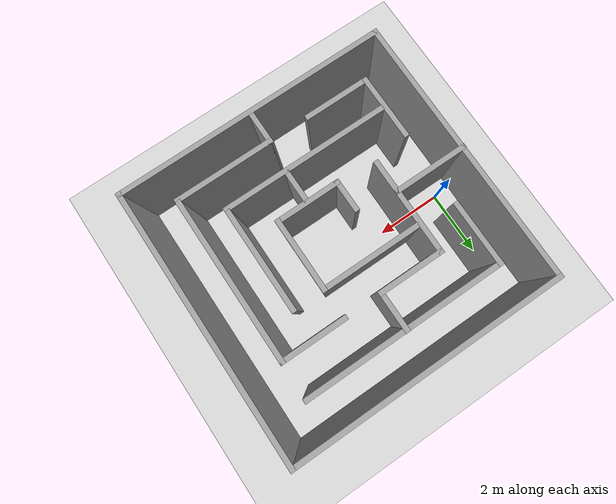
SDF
<sdf version="1.7">
 <world name="default">
  <light name="sun" type="directional">
   <pose>0 0 10 0 -0 0</pose>
   <diffuse>0.8 0.8 0.8 1</diffuse>
   <specular>0.2 0.2 0.2 1</specular>
   <attenuation>
    <range>1000</range>
    <constant>0.9</constant>
    <linear>0.01</linear>
    <quadratic>0.001</quadratic>
   </attenuation>
   <direction>-0.5 0.1 -0.9</direction>
   <spot><inner_angle>0</inner_angle><outer_angle>0</outer_angle><falloff>0</falloff></spot>
  </light>
  <model name="ground_plane">
   <static>1</static>
   <link name="link">
    <collision name="collision">
     <geometry><plane><normal>0 0 1</normal><size>100 100</size></plane></geometry>
     <surface>
      <contact><collide_bitmask>65535</collide_bitmask></contact>
      <friction><ode><mu>100</mu><mu2>50</mu2></ode></friction>
     </surface>
    </collision>
    <visual name="visual">
     <cast_shadows>0</cast_shadows>
     <geometry><plane><normal>0 0 1</normal><size>100 100</size></plane></geometry>
     <material>
      <script><uri>file://media/materials/scripts/gazebo.material</uri><name>Gazebo/Grey</name></script>
     </material>
    </visual>
   </link>
  </model>
  <gravity>0 0 -9.8</gravity>
  <magnetic_field>6e-06 2.3e-05 -4.2e-05</magnetic_field>
  <atmosphere type="adiabatic"/>
  <physics type="ode">
   <max_step_size>0.001</max_step_size>
   <real_time_factor>1</real_time_factor>
   <real_time_update_rate>1000</real_time_update_rate>
  </physics>
  <scene><ambient>0.4 0.4 0.4 1</ambient><background>0.7 0.7 0.7 1</background><shadows>1</shadows></scene>
  <spherical_coordinates>
   <surface_model>EARTH_WGS84</surface_model>
   <latitude_deg>0</latitude_deg>
   <longitude_deg>0</longitude_deg>
   <elevation>0</elevation>
   <heading_deg>0</heading_deg>
  </spherical_coordinates>
  <model name="maze_8x8">
   <pose>3.42318 -0.388956 0 0 -0 0</pose>
   <link name="Wall_1">
    <collision name="Wall_1_Collision">
     <geometry><box><size>8.25 0.15 2.5</size></box></geometry>
     <pose>0 0 1.25 0 -0 0</pose>
    </collision>
    <visual name="Wall_1_Visual">
     <pose>0 0 1.25 0 -0 0</pose>
     <geometry><box><size>8.25 0.15 2.5</size></box></geometry>
     <material>
      <script><uri>file://media/materials/scripts/gazebo.material</uri><name>Gazebo/Grey</name></script>
      <ambient>1 1 1 1</ambient>
     </material>
     <meta><layer>0</layer></meta>
    </visual>
    <pose>-4.04416 -0 0 0 -0 1.5708</pose>
   </link>
   <link name="Wall_100">
    <collision name="Wall_100_Collision">
     <geometry><box><size>5 0.15 2.5</size></box></geometry>
     <pose>0 0 1.25 0 -0 0</pose>
    </collision>
    <visual name="Wall_100_Visual">
     <pose>0 0 1.25 0 -0 0</pose>
     <geometry><box><size>5 0.15 2.5</size></box></geometry>
     <material>
      <script><uri>file://media/materials/scripts/gazebo.material</uri><name>Gazebo/Grey</name></script>
      <ambient>1 1 1 1</ambient>
     </material>
     <meta><layer>0</layer></meta>
    </visual>
    <pose>-0.460696 -2.15237 0 0 -0 3.14159</pose>
   </link>
   <link name="Wall_102">
    <collision name="Wall_102_Collision">
     <geometry><box><size>1 0.15 2.5</size></box></geometry>
     <pose>0 0 1.25 0 -0 0</pose>
    </collision>
    <visual name="Wall_102_Visual">
     <pose>0 0 1.25 0 -0 0</pose>
     <geometry><box><size>1 0.15 2.5</size></box></geometry>
     <material>
      <script><uri>file://media/materials/scripts/gazebo.material</uri><name>Gazebo/Grey</name></script>
      <ambient>1 1 1 1</ambient>
     </material>
     <meta><layer>0</layer></meta>
    </visual>
    <pose>0.139254 -1.65222 0 0 -0 -1.5708</pose>
   </link>
   <link name="Wall_21">
    <collision name="Wall_21_Collision">
     <geometry><box><size>8.25 0.15 2.5</size></box></geometry>
     <pose>0 0 1.25 0 -0 0</pose>
    </collision>
    <visual name="Wall_21_Visual">
     <pose>0 0 1.25 0 -0 0</pose>
     <geometry><box><size>8.25 0.15 2.5</size></box></geometry>
     <material>
      <script><uri>file://media/materials/scripts/gazebo.material</uri><name>Gazebo/Grey</name></script>
      <ambient>1 1 1 1</ambient>
     </material>
     <meta><layer>0</layer></meta>
    </visual>
    <pose>0.005836 -4.05 0 0 -0 0</pose>
   </link>
   <link name="Wall_22">
    <collision name="Wall_22_Collision">
     <geometry><box><size>8.25 0.15 2.5</size></box></geometry>
     <pose>0 0 1.25 0 -0 0</pose>
    </collision>
    <visual name="Wall_22_Visual">
     <pose>0 0 1.25 0 -0 0</pose>
     <geometry><box><size>8.25 0.15 2.5</size></box></geometry>
     <material>
      <script><uri>file://media/materials/scripts/gazebo.material</uri><name>Gazebo/Grey</name></script>
      <ambient>1 1 1 1</ambient>
     </material>
     <meta><layer>0</layer></meta>
    </visual>
    <pose>4.05584 -0 0 0 -0 1.5708</pose>
   </link>
   <link name="Wall_23">
    <collision name="Wall_23_Collision">
     <geometry><box><size>8.25 0.15 2.5</size></box></geometry>
     <pose>0 0 1.25 0 -0 0</pose>
    </collision>
    <visual name="Wall_23_Visual">
     <pose>0 0 1.25 0 -0 0</pose>
     <geometry><box><size>8.25 0.15 2.5</size></box></geometry>
     <material>
      <script><uri>file://media/materials/scripts/gazebo.material</uri><name>Gazebo/Grey</name></script>
      <ambient>1 1 1 1</ambient>
     </material>
     <meta><layer>0</layer></meta>
    </visual>
    <pose>0.005836 4.05 0 0 -0 3.14159</pose>
   </link>
   <link name="Wall_31">
    <collision name="Wall_31_Collision">
     <geometry><box><size>6.0644 0.15 2.5</size></box></geometry>
     <pose>0 0 1.25 0 -0 0</pose>
    </collision>
    <visual name="Wall_31_Visual">
     <pose>0 0 1.25 0 -0 0</pose>
     <geometry><box><size>6.0644 0.15 2.5</size></box></geometry>
     <material>
      <script><uri>file://media/materials/scripts/gazebo.material</uri><name>Gazebo/Grey</name></script>
      <ambient>1 1 1 1</ambient>
     </material>
     <meta><layer>0</layer></meta>
    </visual>
    <pose>-0.060515 2.93404 0 0 -0 0</pose>
   </link>
   <link name="Wall_35">
    <collision name="Wall_35_Collision">
     <geometry><box><size>2 0.15 2.5</size></box></geometry>
     <pose>0 0 1.25 0 -0 0</pose>
    </collision>
    <visual name="Wall_35_Visual">
     <pose>0 0 1.25 0 -0 0</pose>
     <geometry><box><size>2 0.15 2.5</size></box></geometry>
     <material>
      <script><uri>file://media/materials/scripts/gazebo.material</uri><name>Gazebo/Grey</name></script>
      <ambient>1 1 1 1</ambient>
     </material>
     <meta><layer>0</layer></meta>
    </visual>
    <pose>-3.00449 2.00904 0 0 -0 -1.5708</pose>
   </link>
   <link name="Wall_39">
    <collision name="Wall_39_Collision">
     <geometry><box><size>2 0.15 2.5</size></box></geometry>
     <pose>0 0 1.25 0 -0 0</pose>
    </collision>
    <visual name="Wall_39_Visual">
     <pose>0 0 1.25 0 -0 0</pose>
     <geometry><box><size>2 0.15 2.5</size></box></geometry>
     <material>
      <script><uri>file://media/materials/scripts/gazebo.material</uri><name>Gazebo/Grey</name></script>
      <ambient>1 1 1 1</ambient>
     </material>
     <meta><layer>0</layer></meta>
    </visual>
    <pose>-1.01246 1.84213 0 0 -0 3.14159</pose>
   </link>
   <link name="Wall_40">
    <collision name="Wall_40_Collision">
     <geometry><box><size>2.97013 0.15 2.5</size></box></geometry>
     <pose>0 0 1.25 0 -0 0</pose>
    </collision>
    <visual name="Wall_40_Visual">
     <pose>0 0 1.25 0 -0 0</pose>
     <geometry><box><size>2.97013 0.15 2.5</size></box></geometry>
     <material>
      <script><uri>file://media/materials/scripts/gazebo.material</uri><name>Gazebo/Grey</name></script>
      <ambient>1 1 1 1</ambient>
     </material>
     <meta><layer>0</layer></meta>
    </visual>
    <pose>-1.94074 0.432067 0 0 -0 -1.57313</pose>
   </link>
   <link name="Wall_56">
    <collision name="Wall_56_Collision">
     <geometry><box><size>1.25 0.15 2.5</size></box></geometry>
     <pose>0 0 1.25 0 -0 0</pose>
    </collision>
    <visual name="Wall_56_Visual">
     <pose>0 0 1.25 0 -0 0</pose>
     <geometry><box><size>1.25 0.15 2.5</size></box></geometry>
     <material>
      <script><uri>file://media/materials/scripts/gazebo.material</uri><name>Gazebo/Grey</name></script>
      <ambient>1 1 1 1</ambient>
     </material>
     <meta><layer>0</layer></meta>
    </visual>
    <pose>-0.087455 2.39213 0 0 -0 1.5708</pose>
   </link>
   <link name="Wall_66">
    <collision name="Wall_66_Collision">
     <geometry><box><size>1 0.15 2.5</size></box></geometry>
     <pose>0 0 1.25 0 -0 0</pose>
    </collision>
    <visual name="Wall_66_Visual">
     <pose>0 0 1.25 0 -0 0</pose>
     <geometry><box><size>1 0.15 2.5</size></box></geometry>
     <material>
      <script><uri>file://media/materials/scripts/gazebo.material</uri><name>Gazebo/Grey</name></script>
      <ambient>1 1 1 1</ambient>
     </material>
     <meta><layer>0</layer></meta>
    </visual>
    <pose>0.036619 -3.48719 0 0 -0 -1.5708</pose>
   </link>
   <link name="Wall_72">
    <collision name="Wall_72_Collision">
     <geometry><box><size>3 0.15 2.5</size></box></geometry>
     <pose>0 0 1.25 0 -0 0</pose>
    </collision>
    <visual name="Wall_72_Visual">
     <pose>0 0 1.25 0 -0 0</pose>
     <geometry><box><size>3 0.15 2.5</size></box></geometry>
     <material>
      <script><uri>file://media/materials/scripts/gazebo.material</uri><name>Gazebo/Grey</name></script>
      <ambient>1 1 1 1</ambient>
     </material>
     <meta><layer>0</layer></meta>
    </visual>
    <pose>1.46162 -3.06219 0 0 -0 0</pose>
   </link>
   <link name="Wall_75">
    <collision name="Wall_75_Collision">
     <geometry><box><size>5.05772 0.15 2.5</size></box></geometry>
     <pose>0 0 1.25 0 -0 0</pose>
    </collision>
    <visual name="Wall_75_Visual">
     <pose>0 0 1.25 0 -0 0</pose>
     <geometry><box><size>5.05772 0.15 2.5</size></box></geometry>
     <material>
      <script><uri>file://media/materials/scripts/gazebo.material</uri><name>Gazebo/Grey</name></script>
      <ambient>1 1 1 1</ambient>
     </material>
     <meta><layer>0</layer></meta>
    </visual>
    <pose>2.88662 -0.608436 0 0 -0 1.5708</pose>
   </link>
   <link name="Wall_76">
    <collision name="Wall_76_Collision">
     <geometry><box><size>2 0.15 2.5</size></box></geometry>
     <pose>0 0 1.25 0 -0 0</pose>
    </collision>
    <visual name="Wall_76_Visual">
     <pose>0 0 1.25 0 -0 0</pose>
     <geometry><box><size>2 0.15 2.5</size></box></geometry>
     <material>
      <script><uri>file://media/materials/scripts/gazebo.material</uri><name>Gazebo/Grey</name></script>
      <ambient>1 1 1 1</ambient>
     </material>
     <meta><layer>0</layer></meta>
    </visual>
    <pose>1.95012 1.84531 0 0 -0 3.14159</pose>
   </link>
   <link name="Wall_82">
    <collision name="Wall_82_Collision">
     <geometry><box><size>2 0.15 2.5</size></box></geometry>
     <pose>0 0 1.25 0 -0 0</pose>
    </collision>
    <visual name="Wall_82_Visual">
     <pose>0 0 1.25 0 -0 0</pose>
     <geometry><box><size>2 0.15 2.5</size></box></geometry>
     <material>
      <script><uri>file://media/materials/scripts/gazebo.material</uri><name>Gazebo/Grey</name></script>
      <ambient>1 1 1 1</ambient>
     </material>
     <meta><layer>0</layer></meta>
    </visual>
    <pose>-2.0937 -3.05227 0 0 -0 3.14159</pose>
   </link>
   <link name="Wall_86">
    <collision name="Wall_86_Collision">
     <geometry><box><size>2 0.15 2.5</size></box></geometry>
     <pose>0 0 1.25 0 -0 0</pose>
    </collision>
    <visual name="Wall_86_Visual">
     <pose>0 0 1.25 0 -0 0</pose>
     <geometry><box><size>2 0.15 2.5</size></box></geometry>
     <material>
      <script><uri>file://media/materials/scripts/gazebo.material</uri><name>Gazebo/Grey</name></script>
      <ambient>1 1 1 1</ambient>
     </material>
     <meta><layer>0</layer></meta>
    </visual>
    <pose>-3.0187 -2.12727 0 0 -0 1.5708</pose>
   </link>
   <link name="Wall_89">
    <collision name="Wall_89_Collision">
     <geometry><box><size>2.25 0.15 2.5</size></box></geometry>
     <pose>0 0 1.25 0 -0 0</pose>
    </collision>
    <visual name="Wall_89_Visual">
     <pose>0 0 1.25 0 -0 0</pose>
     <geometry><box><size>2.25 0.15 2.5</size></box></geometry>
     <material>
      <script><uri>file://media/materials/scripts/gazebo.material</uri><name>Gazebo/Grey</name></script>
      <ambient>1 1 1 1</ambient>
     </material>
     <meta><layer>0</layer></meta>
    </visual>
    <pose>-3.00584 -0.064777 0 0 -0 3.14159</pose>
   </link>
   <link name="Wall_93">
    <collision name="Wall_93_Collision">
     <geometry><box><size>3.01767 0.15 2.5</size></box></geometry>
     <pose>0 0 1.25 0 -0 0</pose>
    </collision>
    <visual name="Wall_93_Visual">
     <pose>0 0 1.25 0 -0 0</pose>
     <geometry><box><size>3.01767 0.15 2.5</size></box></geometry>
     <material>
      <script><uri>file://media/materials/scripts/gazebo.material</uri><name>Gazebo/Grey</name></script>
      <ambient>1 1 1 1</ambient>
     </material>
     <meta><layer>0</layer></meta>
    </visual>
    <pose>-0.3913 0.962843 0 0 -0 0</pose>
   </link>
   <link name="Wall_94">
    <collision name="Wall_94_Collision">
     <geometry><box><size>2.25 0.15 2.5</size></box></geometry>
     <pose>0 0 1.25 0 -0 0</pose>
    </collision>
    <visual name="Wall_94_Visual">
     <pose>0 0 1.25 0 -0 0</pose>
     <geometry><box><size>2.25 0.15 2.5</size></box></geometry>
     <material>
      <script><uri>file://media/materials/scripts/gazebo.material</uri><name>Gazebo/Grey</name></script>
      <ambient>1 1 1 1</ambient>
     </material>
     <meta><layer>0</layer></meta>
    </visual>
    <pose>1.04253 -0.087158 0 0 -0 -1.5708</pose>
   </link>
   <link name="Wall_95">
    <collision name="Wall_95_Collision">
     <geometry><box><size>1.96958 0.15 2.5</size></box></geometry>
     <pose>0 0 1.25 0 -0 0</pose>
    </collision>
    <visual name="Wall_95_Visual">
     <pose>0 0 1.25 0 -0 0</pose>
     <geometry><box><size>1.96958 0.15 2.5</size></box></geometry>
     <material>
      <script><uri>file://media/materials/scripts/gazebo.material</uri><name>Gazebo/Grey</name></script>
      <ambient>1 1 1 1</ambient>
     </material>
     <meta><layer>0</layer></meta>
    </visual>
    <pose>0.117534 -1.13716 0 0 -0 3.14159</pose>
   </link>
   <link name="Wall_96">
    <collision name="Wall_96_Collision">
     <geometry><box><size>1 0.15 2.5</size></box></geometry>
     <pose>0 0 1.25 0 -0 0</pose>
    </collision>
    <visual name="Wall_96_Visual">
     <pose>0 0 1.25 0 -0 0</pose>
     <geometry><box><size>1 0.15 2.5</size></box></geometry>
     <material>
      <script><uri>file://media/materials/scripts/gazebo.material</uri><name>Gazebo/Grey</name></script>
      <ambient>1 1 1 1</ambient>
     </material>
     <meta><layer>0</layer></meta>
    </visual>
    <pose>-0.792257 -0.712158 0 0 -0 1.5708</pose>
   </link>
   <link name="Wall_98">
    <collision name="Wall_98_Collision">
     <geometry><box><size>3.25 0.15 2.5</size></box></geometry>
     <pose>0 0 1.25 0 -0 0</pose>
    </collision>
    <visual name="Wall_98_Visual">
     <pose>0 0 1.25 0 -0 0</pose>
     <geometry><box><size>3.25 0.15 2.5</size></box></geometry>
     <material>
      <script><uri>file://media/materials/scripts/gazebo.material</uri><name>Gazebo/Grey</name></script>
      <ambient>1 1 1 1</ambient>
     </material>
     <meta><layer>0</layer></meta>
    </visual>
    <pose>1.9643 -0.602366 0 0 -0 -1.5708</pose>
   </link>
   <static>1</static>
  </model>
 </world>
</sdf>
